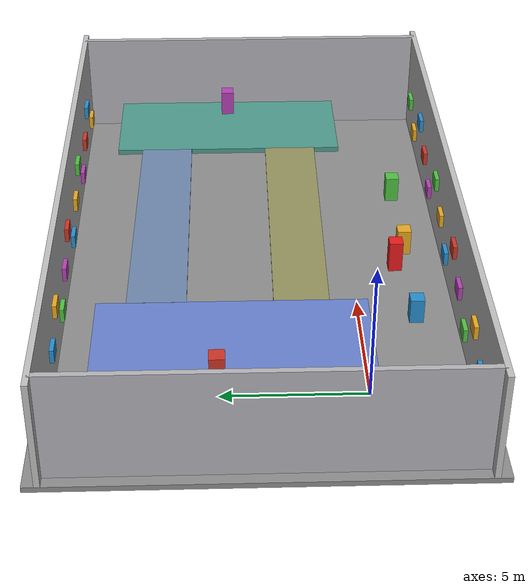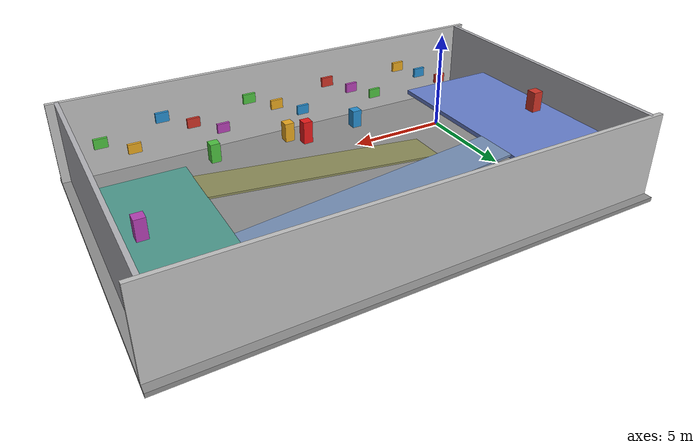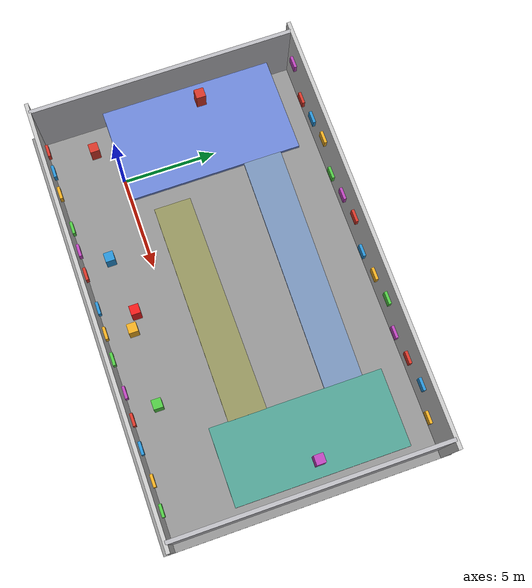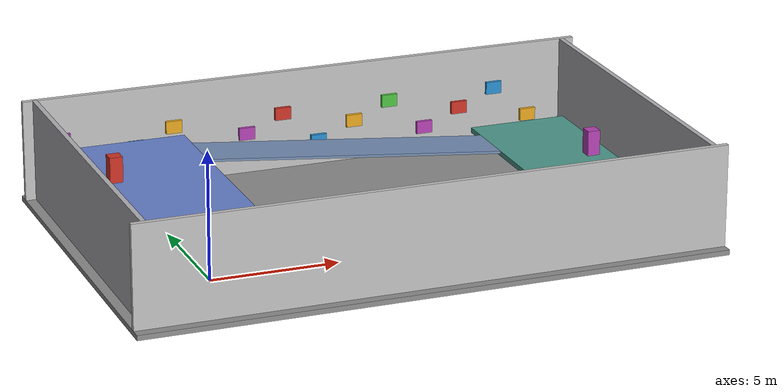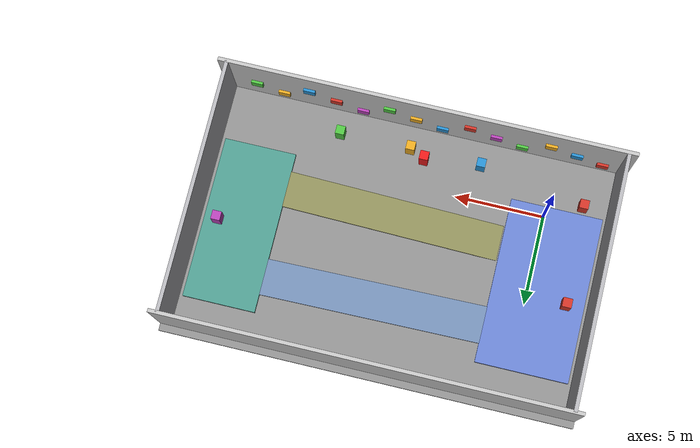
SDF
<sdf version="1.9">
 <world name="teacher_demo">
  <physics name="physics" type="ignored">
   <max_step_size>.005</max_step_size>
   <real_time_factor>1.0</real_time_factor>
  </physics>
  <gravity>0 0 -9.81</gravity>
  <plugin filename="gz-sim-physics-system" name="gz::sim::systems::Physics"/>
  <plugin filename="gz-sim-user-commands-system" name="gz::sim::systems::UserCommands"/>
  <plugin filename="gz-sim-scene-broadcaster-system" name="gz::sim::systems::SceneBroadcaster"/>
  <plugin filename="gz-sim-sensors-system" name="gz::sim::systems::Sensors">
   <render_engine>ogre2</render_engine>
  </plugin>
  <plugin filename="gz-sim-imu-system" name="gz::sim::systems::Imu"/>
  <plugin filename="gz-sim-contact-system" name="gz::sim::systems::Contact"/>
  <scene>
   <ambient>0.65 0.65 0.65 1</ambient>
   <background>0.14 0.18 0.24 1</background>
   <shadows>false</shadows>
  </scene>
  <light name="sun" type="directional">
   <pose>0 0 12 0 0 0</pose>
   <diffuse>0.8 0.8 0.8 1</diffuse>
   <specular>0.1 0.1 0.1 1</specular>
   <direction>-0.3 -0.3 -1</direction>
  </light>
  <model name="floor_1">
   <static>true</static>
   <pose>7.5 3.5 -0.1 0 0 0</pose>
   <link name="link">
    <inertial><mass>50</mass><inertia><ixx>2</ixx><iyy>2</iyy><izz>2</izz></inertia></inertial>
    <collision name="collision">
     <geometry><box><size>23 15 0.2</size></box></geometry>
     <surface><friction><ode><mu>1.0</mu><mu2>1.0</mu2></ode></friction></surface>
    </collision>
    <visual name="visual">
     <geometry><box><size>23 15 0.2</size></box></geometry>
     <material><ambient>0.55 0.55 0.55 1</ambient><diffuse>0.55 0.55 0.55 1</diffuse></material>
    </visual>
   </link>
  </model>
  <model name="floor_2">
   <static>true</static>
   <pose>16 4.5 1.1 0 0 0</pose>
   <link name="link">
    <inertial><mass>50</mass><inertia><ixx>2</ixx><iyy>2</iyy><izz>2</izz></inertia></inertial>
    <collision name="collision">
     <geometry><box><size>4 9 0.2</size></box></geometry>
     <surface><friction><ode><mu>1.0</mu><mu2>1.0</mu2></ode></friction></surface>
    </collision>
    <visual name="visual">
     <geometry><box><size>4 9 0.2</size></box></geometry>
     <material><ambient>0.3 0.6 0.55 1</ambient><diffuse>0.3 0.6 0.55 1</diffuse></material>
    </visual>
   </link>
  </model>
  <model name="floor_3">
   <static>true</static>
   <pose>-0.5 4.5 2.3 0 0 0</pose>
   <link name="link">
    <inertial><mass>50</mass><inertia><ixx>2</ixx><iyy>2</iyy><izz>2</izz></inertia></inertial>
    <collision name="collision">
     <geometry><box><size>5 9 0.2</size></box></geometry>
     <surface><friction><ode><mu>1.0</mu><mu2>1.0</mu2></ode></friction></surface>
    </collision>
    <visual name="visual">
     <geometry><box><size>5 9 0.2</size></box></geometry>
     <material><ambient>0.4 0.5 0.8 1</ambient><diffuse>0.4 0.5 0.8 1</diffuse></material>
    </visual>
   </link>
  </model>
  <model name="ramp_12">
   <static>true</static>
   <pose>8 2 0.5502481404895005 0 -0.09966865249116204 0</pose>
   <link name="link">
    <inertial><mass>50</mass><inertia><ixx>2</ixx><iyy>2</iyy><izz>2</izz></inertia></inertial>
    <collision name="collision">
     <geometry><box><size>12.099850745345067 2 0.1</size></box></geometry>
     <surface><friction><ode><mu>1.0</mu><mu2>1.0</mu2></ode></friction></surface>
    </collision>
    <visual name="visual">
     <geometry><box><size>12.099850745345067 2 0.1</size></box></geometry>
     <material><ambient>0.55 0.55 0.35 1</ambient><diffuse>0.55 0.55 0.35 1</diffuse></material>
    </visual>
   </link>
  </model>
  <model name="ramp_23">
   <static>true</static>
   <pose>8 7 1.7502481404895005 0 0.09966865249116204 0</pose>
   <link name="link">
    <inertial><mass>50</mass><inertia><ixx>2</ixx><iyy>2</iyy><izz>2</izz></inertia></inertial>
    <collision name="collision">
     <geometry><box><size>12.099850745345067 2 0.1</size></box></geometry>
     <surface><friction><ode><mu>1.0</mu><mu2>1.0</mu2></ode></friction></surface>
    </collision>
    <visual name="visual">
     <geometry><box><size>12.099850745345067 2 0.1</size></box></geometry>
     <material><ambient>0.45 0.55 0.7 1</ambient><diffuse>0.45 0.55 0.7 1</diffuse></material>
    </visual>
   </link>
  </model>
  <model name="wall_south">
   <static>true</static>
   <pose>7.5 -3.5 2 0 0 0</pose>
   <link name="link">
    <inertial><mass>50</mass><inertia><ixx>2</ixx><iyy>2</iyy><izz>2</izz></inertia></inertial>
    <collision name="collision">
     <geometry><box><size>23 0.2 4</size></box></geometry>
     <surface><friction><ode><mu>1.0</mu><mu2>1.0</mu2></ode></friction></surface>
    </collision>
    <visual name="visual">
     <geometry><box><size>23 0.2 4</size></box></geometry>
     <material><ambient>0.75 0.75 0.75 1</ambient><diffuse>0.75 0.75 0.75 1</diffuse></material>
    </visual>
   </link>
  </model>
  <model name="wall_north">
   <static>true</static>
   <pose>7.5 10.5 2 0 0 0</pose>
   <link name="link">
    <inertial><mass>50</mass><inertia><ixx>2</ixx><iyy>2</iyy><izz>2</izz></inertia></inertial>
    <collision name="collision">
     <geometry><box><size>23 0.2 4</size></box></geometry>
     <surface><friction><ode><mu>1.0</mu><mu2>1.0</mu2></ode></friction></surface>
    </collision>
    <visual name="visual">
     <geometry><box><size>23 0.2 4</size></box></geometry>
     <material><ambient>0.75 0.75 0.75 1</ambient><diffuse>0.75 0.75 0.75 1</diffuse></material>
    </visual>
   </link>
  </model>
  <model name="wall_-3.5">
   <static>true</static>
   <pose>-3.5 3.5 2 0 0 0</pose>
   <link name="link">
    <inertial><mass>50</mass><inertia><ixx>2</ixx><iyy>2</iyy><izz>2</izz></inertia></inertial>
    <collision name="collision">
     <geometry><box><size>0.2 14 4</size></box></geometry>
     <surface><friction><ode><mu>1.0</mu><mu2>1.0</mu2></ode></friction></surface>
    </collision>
    <visual name="visual">
     <geometry><box><size>0.2 14 4</size></box></geometry>
     <material><ambient>0.7 0.7 0.72 1</ambient><diffuse>0.7 0.7 0.72 1</diffuse></material>
    </visual>
   </link>
  </model>
  <model name="wall_18.5">
   <static>true</static>
   <pose>18.5 3.5 2 0 0 0</pose>
   <link name="link">
    <inertial><mass>50</mass><inertia><ixx>2</ixx><iyy>2</iyy><izz>2</izz></inertia></inertial>
    <collision name="collision">
     <geometry><box><size>0.2 14 4</size></box></geometry>
     <surface><friction><ode><mu>1.0</mu><mu2>1.0</mu2></ode></friction></surface>
    </collision>
    <visual name="visual">
     <geometry><box><size>0.2 14 4</size></box></geometry>
     <material><ambient>0.7 0.7 0.72 1</ambient><diffuse>0.7 0.7 0.72 1</diffuse></material>
    </visual>
   </link>
  </model>
  <model name="panel_0">
   <static>true</static>
   <pose>-2.5 -3.32 1.0 0 0 0</pose>
   <link name="link">
    <inertial><mass>50</mass><inertia><ixx>2</ixx><iyy>2</iyy><izz>2</izz></inertia></inertial>
    <collision name="collision">
     <geometry><box><size>0.65 0.15 0.5</size></box></geometry>
     <surface><friction><ode><mu>1.0</mu><mu2>1.0</mu2></ode></friction></surface>
    </collision>
    <visual name="visual">
     <geometry><box><size>0.65 0.15 0.5</size></box></geometry>
     <material><ambient>0.8 0.2 0.15 1</ambient><diffuse>0.8 0.2 0.15 1</diffuse></material>
    </visual>
   </link>
  </model>
  <model name="panel_1">
   <static>true</static>
   <pose>-1.0 -3.32 1.65 0 0 0</pose>
   <link name="link">
    <inertial><mass>50</mass><inertia><ixx>2</ixx><iyy>2</iyy><izz>2</izz></inertia></inertial>
    <collision name="collision">
     <geometry><box><size>0.65 0.15 0.5</size></box></geometry>
     <surface><friction><ode><mu>1.0</mu><mu2>1.0</mu2></ode></friction></surface>
    </collision>
    <visual name="visual">
     <geometry><box><size>0.65 0.15 0.5</size></box></geometry>
     <material><ambient>0.15 0.55 0.8 1</ambient><diffuse>0.15 0.55 0.8 1</diffuse></material>
    </visual>
   </link>
  </model>
  <model name="panel_2">
   <static>true</static>
   <pose>0.5 -3.32 2.3 0 0 0</pose>
   <link name="link">
    <inertial><mass>50</mass><inertia><ixx>2</ixx><iyy>2</iyy><izz>2</izz></inertia></inertial>
    <collision name="collision">
     <geometry><box><size>0.65 0.15 0.5</size></box></geometry>
     <surface><friction><ode><mu>1.0</mu><mu2>1.0</mu2></ode></friction></surface>
    </collision>
    <visual name="visual">
     <geometry><box><size>0.65 0.15 0.5</size></box></geometry>
     <material><ambient>0.9 0.65 0.12 1</ambient><diffuse>0.9 0.65 0.12 1</diffuse></material>
    </visual>
   </link>
  </model>
  <model name="panel_3">
   <static>true</static>
   <pose>2.0 -3.32 1.0 0 0 0</pose>
   <link name="link">
    <inertial><mass>50</mass><inertia><ixx>2</ixx><iyy>2</iyy><izz>2</izz></inertia></inertial>
    <collision name="collision">
     <geometry><box><size>0.65 0.15 0.5</size></box></geometry>
     <surface><friction><ode><mu>1.0</mu><mu2>1.0</mu2></ode></friction></surface>
    </collision>
    <visual name="visual">
     <geometry><box><size>0.65 0.15 0.5</size></box></geometry>
     <material><ambient>0.3 0.75 0.25 1</ambient><diffuse>0.3 0.75 0.25 1</diffuse></material>
    </visual>
   </link>
  </model>
  <model name="panel_4">
   <static>true</static>
   <pose>3.5 -3.32 1.65 0 0 0</pose>
   <link name="link">
    <inertial><mass>50</mass><inertia><ixx>2</ixx><iyy>2</iyy><izz>2</izz></inertia></inertial>
    <collision name="collision">
     <geometry><box><size>0.65 0.15 0.5</size></box></geometry>
     <surface><friction><ode><mu>1.0</mu><mu2>1.0</mu2></ode></friction></surface>
    </collision>
    <visual name="visual">
     <geometry><box><size>0.65 0.15 0.5</size></box></geometry>
     <material><ambient>0.7 0.25 0.7 1</ambient><diffuse>0.7 0.25 0.7 1</diffuse></material>
    </visual>
   </link>
  </model>
  <model name="panel_5">
   <static>true</static>
   <pose>5.0 -3.32 2.3 0 0 0</pose>
   <link name="link">
    <inertial><mass>50</mass><inertia><ixx>2</ixx><iyy>2</iyy><izz>2</izz></inertia></inertial>
    <collision name="collision">
     <geometry><box><size>0.65 0.15 0.5</size></box></geometry>
     <surface><friction><ode><mu>1.0</mu><mu2>1.0</mu2></ode></friction></surface>
    </collision>
    <visual name="visual">
     <geometry><box><size>0.65 0.15 0.5</size></box></geometry>
     <material><ambient>0.8 0.2 0.15 1</ambient><diffuse>0.8 0.2 0.15 1</diffuse></material>
    </visual>
   </link>
  </model>
  <model name="panel_6">
   <static>true</static>
   <pose>6.5 -3.32 1.0 0 0 0</pose>
   <link name="link">
    <inertial><mass>50</mass><inertia><ixx>2</ixx><iyy>2</iyy><izz>2</izz></inertia></inertial>
    <collision name="collision">
     <geometry><box><size>0.65 0.15 0.5</size></box></geometry>
     <surface><friction><ode><mu>1.0</mu><mu2>1.0</mu2></ode></friction></surface>
    </collision>
    <visual name="visual">
     <geometry><box><size>0.65 0.15 0.5</size></box></geometry>
     <material><ambient>0.15 0.55 0.8 1</ambient><diffuse>0.15 0.55 0.8 1</diffuse></material>
    </visual>
   </link>
  </model>
  <model name="panel_7">
   <static>true</static>
   <pose>8.0 -3.32 1.65 0 0 0</pose>
   <link name="link">
    <inertial><mass>50</mass><inertia><ixx>2</ixx><iyy>2</iyy><izz>2</izz></inertia></inertial>
    <collision name="collision">
     <geometry><box><size>0.65 0.15 0.5</size></box></geometry>
     <surface><friction><ode><mu>1.0</mu><mu2>1.0</mu2></ode></friction></surface>
    </collision>
    <visual name="visual">
     <geometry><box><size>0.65 0.15 0.5</size></box></geometry>
     <material><ambient>0.9 0.65 0.12 1</ambient><diffuse>0.9 0.65 0.12 1</diffuse></material>
    </visual>
   </link>
  </model>
  <model name="panel_8">
   <static>true</static>
   <pose>9.5 -3.32 2.3 0 0 0</pose>
   <link name="link">
    <inertial><mass>50</mass><inertia><ixx>2</ixx><iyy>2</iyy><izz>2</izz></inertia></inertial>
    <collision name="collision">
     <geometry><box><size>0.65 0.15 0.5</size></box></geometry>
     <surface><friction><ode><mu>1.0</mu><mu2>1.0</mu2></ode></friction></surface>
    </collision>
    <visual name="visual">
     <geometry><box><size>0.65 0.15 0.5</size></box></geometry>
     <material><ambient>0.3 0.75 0.25 1</ambient><diffuse>0.3 0.75 0.25 1</diffuse></material>
    </visual>
   </link>
  </model>
  <model name="panel_9">
   <static>true</static>
   <pose>11.0 -3.32 1.0 0 0 0</pose>
   <link name="link">
    <inertial><mass>50</mass><inertia><ixx>2</ixx><iyy>2</iyy><izz>2</izz></inertia></inertial>
    <collision name="collision">
     <geometry><box><size>0.65 0.15 0.5</size></box></geometry>
     <surface><friction><ode><mu>1.0</mu><mu2>1.0</mu2></ode></friction></surface>
    </collision>
    <visual name="visual">
     <geometry><box><size>0.65 0.15 0.5</size></box></geometry>
     <material><ambient>0.7 0.25 0.7 1</ambient><diffuse>0.7 0.25 0.7 1</diffuse></material>
    </visual>
   </link>
  </model>
  <model name="panel_10">
   <static>true</static>
   <pose>12.5 -3.32 1.65 0 0 0</pose>
   <link name="link">
    <inertial><mass>50</mass><inertia><ixx>2</ixx><iyy>2</iyy><izz>2</izz></inertia></inertial>
    <collision name="collision">
     <geometry><box><size>0.65 0.15 0.5</size></box></geometry>
     <surface><friction><ode><mu>1.0</mu><mu2>1.0</mu2></ode></friction></surface>
    </collision>
    <visual name="visual">
     <geometry><box><size>0.65 0.15 0.5</size></box></geometry>
     <material><ambient>0.8 0.2 0.15 1</ambient><diffuse>0.8 0.2 0.15 1</diffuse></material>
    </visual>
   </link>
  </model>
  <model name="panel_11">
   <static>true</static>
   <pose>14.0 -3.32 2.3 0 0 0</pose>
   <link name="link">
    <inertial><mass>50</mass><inertia><ixx>2</ixx><iyy>2</iyy><izz>2</izz></inertia></inertial>
    <collision name="collision">
     <geometry><box><size>0.65 0.15 0.5</size></box></geometry>
     <surface><friction><ode><mu>1.0</mu><mu2>1.0</mu2></ode></friction></surface>
    </collision>
    <visual name="visual">
     <geometry><box><size>0.65 0.15 0.5</size></box></geometry>
     <material><ambient>0.15 0.55 0.8 1</ambient><diffuse>0.15 0.55 0.8 1</diffuse></material>
    </visual>
   </link>
  </model>
  <model name="panel_12">
   <static>true</static>
   <pose>15.5 -3.32 1.0 0 0 0</pose>
   <link name="link">
    <inertial><mass>50</mass><inertia><ixx>2</ixx><iyy>2</iyy><izz>2</izz></inertia></inertial>
    <collision name="collision">
     <geometry><box><size>0.65 0.15 0.5</size></box></geometry>
     <surface><friction><ode><mu>1.0</mu><mu2>1.0</mu2></ode></friction></surface>
    </collision>
    <visual name="visual">
     <geometry><box><size>0.65 0.15 0.5</size></box></geometry>
     <material><ambient>0.9 0.65 0.12 1</ambient><diffuse>0.9 0.65 0.12 1</diffuse></material>
    </visual>
   </link>
  </model>
  <model name="panel_13">
   <static>true</static>
   <pose>17.0 -3.32 1.65 0 0 0</pose>
   <link name="link">
    <inertial><mass>50</mass><inertia><ixx>2</ixx><iyy>2</iyy><izz>2</izz></inertia></inertial>
    <collision name="collision">
     <geometry><box><size>0.65 0.15 0.5</size></box></geometry>
     <surface><friction><ode><mu>1.0</mu><mu2>1.0</mu2></ode></friction></surface>
    </collision>
    <visual name="visual">
     <geometry><box><size>0.65 0.15 0.5</size></box></geometry>
     <material><ambient>0.3 0.75 0.25 1</ambient><diffuse>0.3 0.75 0.25 1</diffuse></material>
    </visual>
   </link>
  </model>
  <model name="panel_14">
   <static>true</static>
   <pose>-2.5 10.32 2.3 0 0 0</pose>
   <link name="link">
    <inertial><mass>50</mass><inertia><ixx>2</ixx><iyy>2</iyy><izz>2</izz></inertia></inertial>
    <collision name="collision">
     <geometry><box><size>0.65 0.15 0.5</size></box></geometry>
     <surface><friction><ode><mu>1.0</mu><mu2>1.0</mu2></ode></friction></surface>
    </collision>
    <visual name="visual">
     <geometry><box><size>0.65 0.15 0.5</size></box></geometry>
     <material><ambient>0.7 0.25 0.7 1</ambient><diffuse>0.7 0.25 0.7 1</diffuse></material>
    </visual>
   </link>
  </model>
  <model name="panel_15">
   <static>true</static>
   <pose>-1.0 10.32 1.0 0 0 0</pose>
   <link name="link">
    <inertial><mass>50</mass><inertia><ixx>2</ixx><iyy>2</iyy><izz>2</izz></inertia></inertial>
    <collision name="collision">
     <geometry><box><size>0.65 0.15 0.5</size></box></geometry>
     <surface><friction><ode><mu>1.0</mu><mu2>1.0</mu2></ode></friction></surface>
    </collision>
    <visual name="visual">
     <geometry><box><size>0.65 0.15 0.5</size></box></geometry>
     <material><ambient>0.8 0.2 0.15 1</ambient><diffuse>0.8 0.2 0.15 1</diffuse></material>
    </visual>
   </link>
  </model>
  <model name="panel_16">
   <static>true</static>
   <pose>0.5 10.32 1.65 0 0 0</pose>
   <link name="link">
    <inertial><mass>50</mass><inertia><ixx>2</ixx><iyy>2</iyy><izz>2</izz></inertia></inertial>
    <collision name="collision">
     <geometry><box><size>0.65 0.15 0.5</size></box></geometry>
     <surface><friction><ode><mu>1.0</mu><mu2>1.0</mu2></ode></friction></surface>
    </collision>
    <visual name="visual">
     <geometry><box><size>0.65 0.15 0.5</size></box></geometry>
     <material><ambient>0.15 0.55 0.8 1</ambient><diffuse>0.15 0.55 0.8 1</diffuse></material>
    </visual>
   </link>
  </model>
  <model name="panel_17">
   <static>true</static>
   <pose>2.0 10.32 2.3 0 0 0</pose>
   <link name="link">
    <inertial><mass>50</mass><inertia><ixx>2</ixx><iyy>2</iyy><izz>2</izz></inertia></inertial>
    <collision name="collision">
     <geometry><box><size>0.65 0.15 0.5</size></box></geometry>
     <surface><friction><ode><mu>1.0</mu><mu2>1.0</mu2></ode></friction></surface>
    </collision>
    <visual name="visual">
     <geometry><box><size>0.65 0.15 0.5</size></box></geometry>
     <material><ambient>0.9 0.65 0.12 1</ambient><diffuse>0.9 0.65 0.12 1</diffuse></material>
    </visual>
   </link>
  </model>
  <model name="panel_18">
   <static>true</static>
   <pose>3.5 10.32 1.0 0 0 0</pose>
   <link name="link">
    <inertial><mass>50</mass><inertia><ixx>2</ixx><iyy>2</iyy><izz>2</izz></inertia></inertial>
    <collision name="collision">
     <geometry><box><size>0.65 0.15 0.5</size></box></geometry>
     <surface><friction><ode><mu>1.0</mu><mu2>1.0</mu2></ode></friction></surface>
    </collision>
    <visual name="visual">
     <geometry><box><size>0.65 0.15 0.5</size></box></geometry>
     <material><ambient>0.3 0.75 0.25 1</ambient><diffuse>0.3 0.75 0.25 1</diffuse></material>
    </visual>
   </link>
  </model>
  <model name="panel_19">
   <static>true</static>
   <pose>5.0 10.32 1.65 0 0 0</pose>
   <link name="link">
    <inertial><mass>50</mass><inertia><ixx>2</ixx><iyy>2</iyy><izz>2</izz></inertia></inertial>
    <collision name="collision">
     <geometry><box><size>0.65 0.15 0.5</size></box></geometry>
     <surface><friction><ode><mu>1.0</mu><mu2>1.0</mu2></ode></friction></surface>
    </collision>
    <visual name="visual">
     <geometry><box><size>0.65 0.15 0.5</size></box></geometry>
     <material><ambient>0.7 0.25 0.7 1</ambient><diffuse>0.7 0.25 0.7 1</diffuse></material>
    </visual>
   </link>
  </model>
  <model name="panel_20">
   <static>true</static>
   <pose>6.5 10.32 2.3 0 0 0</pose>
   <link name="link">
    <inertial><mass>50</mass><inertia><ixx>2</ixx><iyy>2</iyy><izz>2</izz></inertia></inertial>
    <collision name="collision">
     <geometry><box><size>0.65 0.15 0.5</size></box></geometry>
     <surface><friction><ode><mu>1.0</mu><mu2>1.0</mu2></ode></friction></surface>
    </collision>
    <visual name="visual">
     <geometry><box><size>0.65 0.15 0.5</size></box></geometry>
     <material><ambient>0.8 0.2 0.15 1</ambient><diffuse>0.8 0.2 0.15 1</diffuse></material>
    </visual>
   </link>
  </model>
  <model name="panel_21">
   <static>true</static>
   <pose>8.0 10.32 1.0 0 0 0</pose>
   <link name="link">
    <inertial><mass>50</mass><inertia><ixx>2</ixx><iyy>2</iyy><izz>2</izz></inertia></inertial>
    <collision name="collision">
     <geometry><box><size>0.65 0.15 0.5</size></box></geometry>
     <surface><friction><ode><mu>1.0</mu><mu2>1.0</mu2></ode></friction></surface>
    </collision>
    <visual name="visual">
     <geometry><box><size>0.65 0.15 0.5</size></box></geometry>
     <material><ambient>0.15 0.55 0.8 1</ambient><diffuse>0.15 0.55 0.8 1</diffuse></material>
    </visual>
   </link>
  </model>
  <model name="panel_22">
   <static>true</static>
   <pose>9.5 10.32 1.65 0 0 0</pose>
   <link name="link">
    <inertial><mass>50</mass><inertia><ixx>2</ixx><iyy>2</iyy><izz>2</izz></inertia></inertial>
    <collision name="collision">
     <geometry><box><size>0.65 0.15 0.5</size></box></geometry>
     <surface><friction><ode><mu>1.0</mu><mu2>1.0</mu2></ode></friction></surface>
    </collision>
    <visual name="visual">
     <geometry><box><size>0.65 0.15 0.5</size></box></geometry>
     <material><ambient>0.9 0.65 0.12 1</ambient><diffuse>0.9 0.65 0.12 1</diffuse></material>
    </visual>
   </link>
  </model>
  <model name="panel_23">
   <static>true</static>
   <pose>11.0 10.32 2.3 0 0 0</pose>
   <link name="link">
    <inertial><mass>50</mass><inertia><ixx>2</ixx><iyy>2</iyy><izz>2</izz></inertia></inertial>
    <collision name="collision">
     <geometry><box><size>0.65 0.15 0.5</size></box></geometry>
     <surface><friction><ode><mu>1.0</mu><mu2>1.0</mu2></ode></friction></surface>
    </collision>
    <visual name="visual">
     <geometry><box><size>0.65 0.15 0.5</size></box></geometry>
     <material><ambient>0.3 0.75 0.25 1</ambient><diffuse>0.3 0.75 0.25 1</diffuse></material>
    </visual>
   </link>
  </model>
  <model name="panel_24">
   <static>true</static>
   <pose>12.5 10.32 1.0 0 0 0</pose>
   <link name="link">
    <inertial><mass>50</mass><inertia><ixx>2</ixx><iyy>2</iyy><izz>2</izz></inertia></inertial>
    <collision name="collision">
     <geometry><box><size>0.65 0.15 0.5</size></box></geometry>
     <surface><friction><ode><mu>1.0</mu><mu2>1.0</mu2></ode></friction></surface>
    </collision>
    <visual name="visual">
     <geometry><box><size>0.65 0.15 0.5</size></box></geometry>
     <material><ambient>0.7 0.25 0.7 1</ambient><diffuse>0.7 0.25 0.7 1</diffuse></material>
    </visual>
   </link>
  </model>
  <model name="panel_25">
   <static>true</static>
   <pose>14.0 10.32 1.65 0 0 0</pose>
   <link name="link">
    <inertial><mass>50</mass><inertia><ixx>2</ixx><iyy>2</iyy><izz>2</izz></inertia></inertial>
    <collision name="collision">
     <geometry><box><size>0.65 0.15 0.5</size></box></geometry>
     <surface><friction><ode><mu>1.0</mu><mu2>1.0</mu2></ode></friction></surface>
    </collision>
    <visual name="visual">
     <geometry><box><size>0.65 0.15 0.5</size></box></geometry>
     <material><ambient>0.8 0.2 0.15 1</ambient><diffuse>0.8 0.2 0.15 1</diffuse></material>
    </visual>
   </link>
  </model>
  <model name="panel_26">
   <static>true</static>
   <pose>15.5 10.32 2.3 0 0 0</pose>
   <link name="link">
    <inertial><mass>50</mass><inertia><ixx>2</ixx><iyy>2</iyy><izz>2</izz></inertia></inertial>
    <collision name="collision">
     <geometry><box><size>0.65 0.15 0.5</size></box></geometry>
     <surface><friction><ode><mu>1.0</mu><mu2>1.0</mu2></ode></friction></surface>
    </collision>
    <visual name="visual">
     <geometry><box><size>0.65 0.15 0.5</size></box></geometry>
     <material><ambient>0.15 0.55 0.8 1</ambient><diffuse>0.15 0.55 0.8 1</diffuse></material>
    </visual>
   </link>
  </model>
  <model name="panel_27">
   <static>true</static>
   <pose>17.0 10.32 1.0 0 0 0</pose>
   <link name="link">
    <inertial><mass>50</mass><inertia><ixx>2</ixx><iyy>2</iyy><izz>2</izz></inertia></inertial>
    <collision name="collision">
     <geometry><box><size>0.65 0.15 0.5</size></box></geometry>
     <surface><friction><ode><mu>1.0</mu><mu2>1.0</mu2></ode></friction></surface>
    </collision>
    <visual name="visual">
     <geometry><box><size>0.65 0.15 0.5</size></box></geometry>
     <material><ambient>0.9 0.65 0.12 1</ambient><diffuse>0.9 0.65 0.12 1</diffuse></material>
    </visual>
   </link>
  </model>
  <model name="landmark_0">
   <static>true</static>
   <pose>-2 -1 0.5 0 0 0</pose>
   <link name="link">
    <inertial><mass>50</mass><inertia><ixx>2</ixx><iyy>2</iyy><izz>2</izz></inertia></inertial>
    <collision name="collision">
     <geometry><box><size>0.5 0.5 1</size></box></geometry>
     <surface><friction><ode><mu>1.0</mu><mu2>1.0</mu2></ode></friction></surface>
    </collision>
    <visual name="visual">
     <geometry><box><size>0.5 0.5 1</size></box></geometry>
     <material><ambient>0.8 0.2 0.15 1</ambient><diffuse>0.8 0.2 0.15 1</diffuse></material>
    </visual>
   </link>
  </model>
  <model name="landmark_1">
   <static>true</static>
   <pose>4 -2 0.45 0 0 0</pose>
   <link name="link">
    <inertial><mass>50</mass><inertia><ixx>2</ixx><iyy>2</iyy><izz>2</izz></inertia></inertial>
    <collision name="collision">
     <geometry><box><size>0.5 0.5 1</size></box></geometry>
     <surface><friction><ode><mu>1.0</mu><mu2>1.0</mu2></ode></friction></surface>
    </collision>
    <visual name="visual">
     <geometry><box><size>0.5 0.5 1</size></box></geometry>
     <material><ambient>0.15 0.55 0.8 1</ambient><diffuse>0.15 0.55 0.8 1</diffuse></material>
    </visual>
   </link>
  </model>
  <model name="landmark_2">
   <static>true</static>
   <pose>8 -2 0.65 0 0 0</pose>
   <link name="link">
    <inertial><mass>50</mass><inertia><ixx>2</ixx><iyy>2</iyy><izz>2</izz></inertia></inertial>
    <collision name="collision">
     <geometry><box><size>0.5 0.5 1</size></box></geometry>
     <surface><friction><ode><mu>1.0</mu><mu2>1.0</mu2></ode></friction></surface>
    </collision>
    <visual name="visual">
     <geometry><box><size>0.5 0.5 1</size></box></geometry>
     <material><ambient>0.9 0.65 0.12 1</ambient><diffuse>0.9 0.65 0.12 1</diffuse></material>
    </visual>
   </link>
  </model>
  <model name="landmark_3">
   <static>true</static>
   <pose>12 -2 0.5 0 0 0</pose>
   <link name="link">
    <inertial><mass>50</mass><inertia><ixx>2</ixx><iyy>2</iyy><izz>2</izz></inertia></inertial>
    <collision name="collision">
     <geometry><box><size>0.5 0.5 1</size></box></geometry>
     <surface><friction><ode><mu>1.0</mu><mu2>1.0</mu2></ode></friction></surface>
    </collision>
    <visual name="visual">
     <geometry><box><size>0.5 0.5 1</size></box></geometry>
     <material><ambient>0.3 0.75 0.25 1</ambient><diffuse>0.3 0.75 0.25 1</diffuse></material>
    </visual>
   </link>
  </model>
  <model name="landmark_4">
   <static>true</static>
   <pose>17.2 4.5 1.7 0 0 0</pose>
   <link name="link">
    <inertial><mass>50</mass><inertia><ixx>2</ixx><iyy>2</iyy><izz>2</izz></inertia></inertial>
    <collision name="collision">
     <geometry><box><size>0.5 0.5 1</size></box></geometry>
     <surface><friction><ode><mu>1.0</mu><mu2>1.0</mu2></ode></friction></surface>
    </collision>
    <visual name="visual">
     <geometry><box><size>0.5 0.5 1</size></box></geometry>
     <material><ambient>0.7 0.25 0.7 1</ambient><diffuse>0.7 0.25 0.7 1</diffuse></material>
    </visual>
   </link>
  </model>
  <model name="landmark_5">
   <static>true</static>
   <pose>-2 5 2.9 0 0 0</pose>
   <link name="link">
    <inertial><mass>50</mass><inertia><ixx>2</ixx><iyy>2</iyy><izz>2</izz></inertia></inertial>
    <collision name="collision">
     <geometry><box><size>0.5 0.5 1</size></box></geometry>
     <surface><friction><ode><mu>1.0</mu><mu2>1.0</mu2></ode></friction></surface>
    </collision>
    <visual name="visual">
     <geometry><box><size>0.5 0.5 1</size></box></geometry>
     <material><ambient>0.8 0.2 0.15 1</ambient><diffuse>0.8 0.2 0.15 1</diffuse></material>
    </visual>
   </link>
  </model>
  <model name="moving_obstacle">
   <static>true</static>
   <pose>7.1500000000000004 -1.6000000000000001 0.59999999999999998 0 0 0</pose>
   <link name="link">
    <inertial><mass>50</mass><inertia><ixx>2</ixx><iyy>2</iyy><izz>2</izz></inertia></inertial>
    <collision name="collision">
     <geometry><box><size>0.5 0.5 1.2</size></box></geometry>
     <surface><friction><ode><mu>1.0</mu><mu2>1.0</mu2></ode></friction></surface>
    </collision>
    <visual name="visual">
     <geometry><box><size>0.5 0.5 1.2</size></box></geometry>
     <material><ambient>0.9 0.1 0.1 1</ambient><diffuse>0.9 0.1 0.1 1</diffuse></material>
    </visual>
   </link>
  </model>
  <model name="teacher_overview_camera">
   <static>true</static>
   <pose>6.5 3.0 2.2 0.0 0.5 -1.5707963267948966</pose>
   <link name="camera_link">
    <sensor name="overview" type="camera">
     <topic>/demo/teacher/overview</topic>
     <always_on>true</always_on>
     <update_rate>2</update_rate>
     <gz_frame_id>teacher_overview_frame</gz_frame_id>
     <camera>
      <horizontal_fov>1.3962634015954636</horizontal_fov>
      <image><width>640</width><height>480</height><format>R8G8B8</format></image>
      <clip><near>.1</near><far>100</far></clip>
      <camera_info_topic>/demo/teacher/overview_info</camera_info_topic>
     </camera>
    </sensor>
   </link>
  </model>
 </world>
</sdf>
